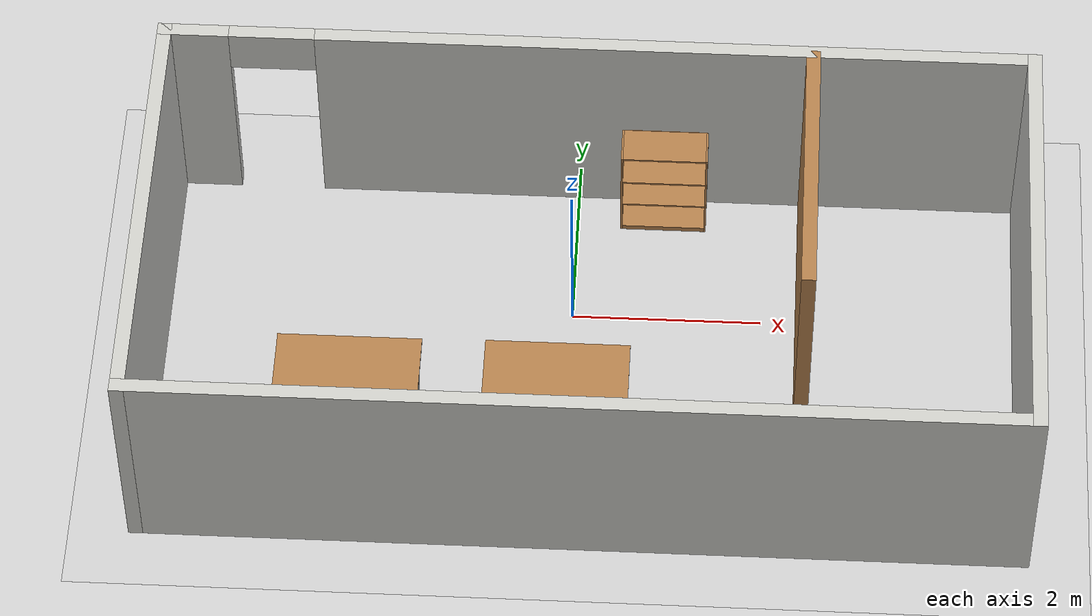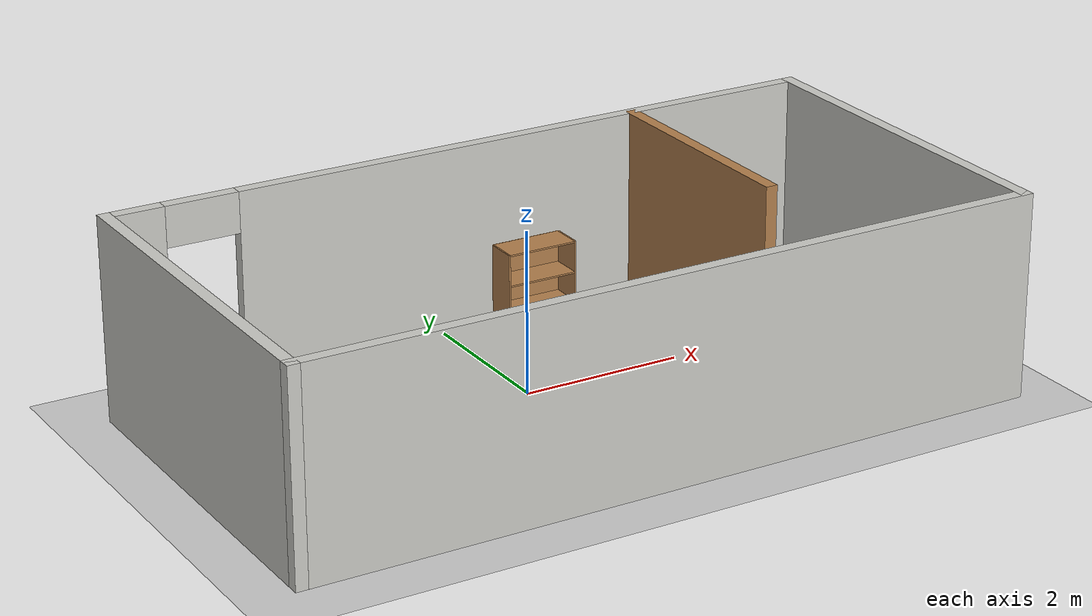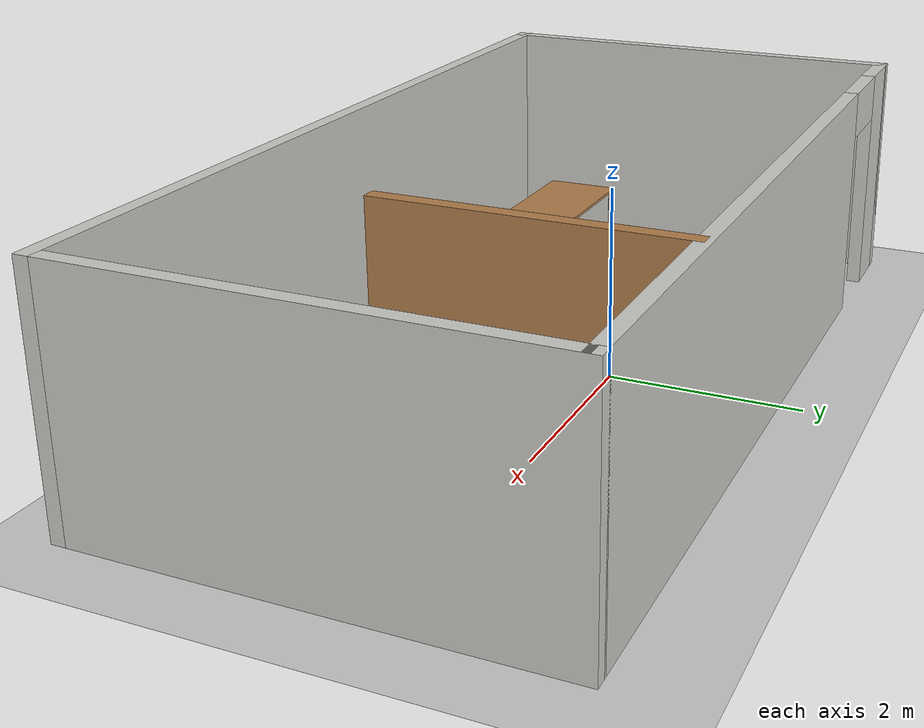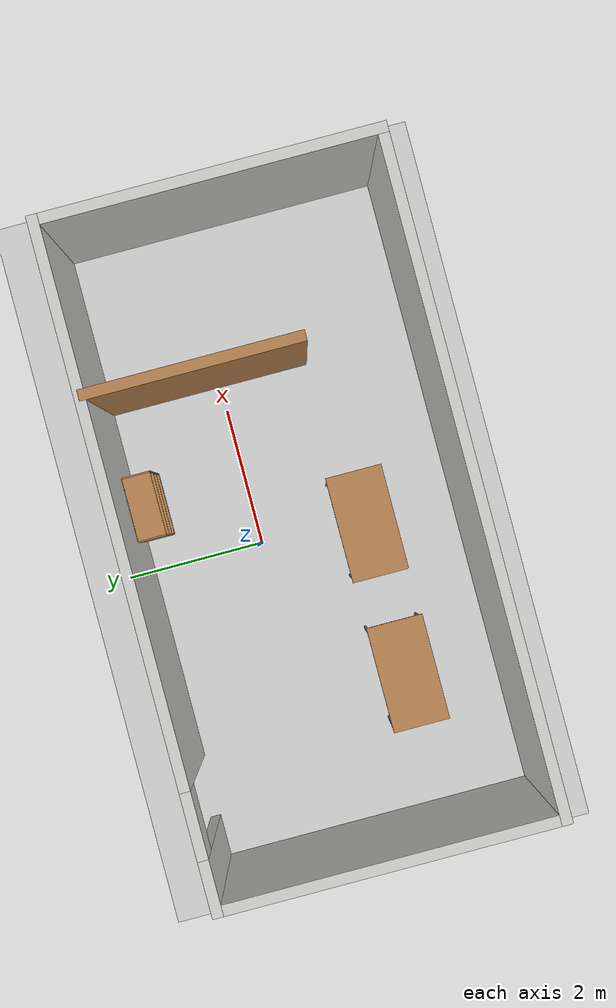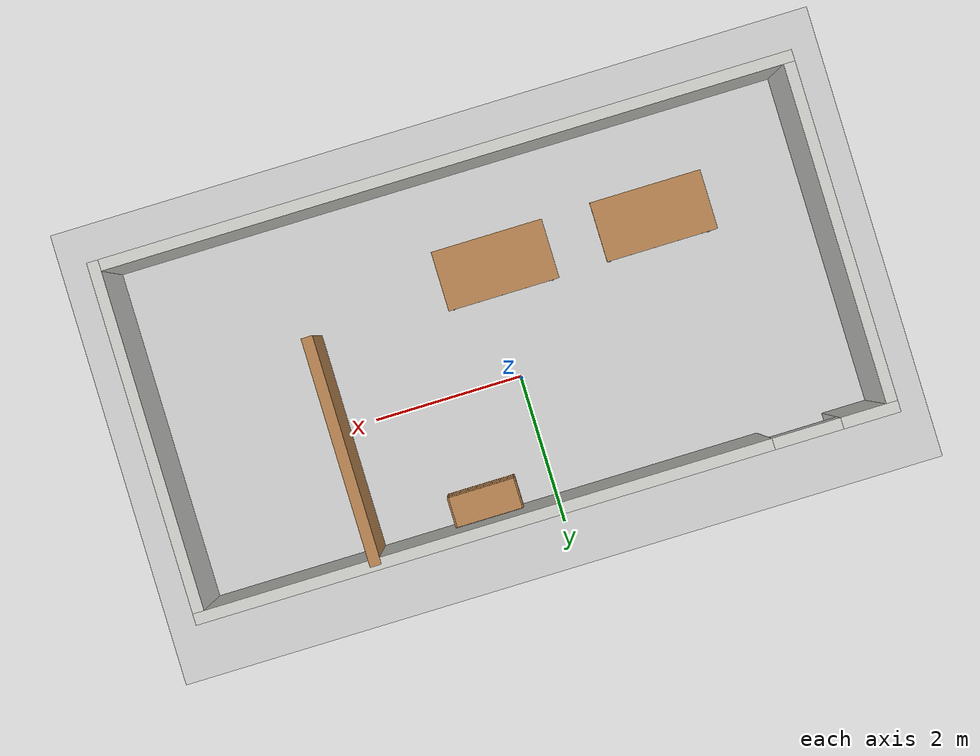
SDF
<sdf version="1.6">
 <world name="default">
  <light name="sun" type="directional">
   <pose>0 0 10 0 -0 0</pose>
   <diffuse>0.8 0.8 0.8 1</diffuse>
   <specular>0.2 0.2 0.2 1</specular>
   <attenuation>
    <range>1000</range>
    <constant>0.9</constant>
    <linear>0.01</linear>
    <quadratic>0.001</quadratic>
   </attenuation>
   <direction>-0.5 0.1 -0.9</direction>
  </light>
  <model name="ground_plane">
   <static>1</static>
   <link name="link">
    <collision name="collision">
     <geometry><plane><normal>0 0 1</normal><size>100 100</size></plane></geometry>
     <surface><friction><ode><mu>100</mu><mu2>50</mu2></ode></friction></surface>
    </collision>
    <visual name="visual">
     <cast_shadows>0</cast_shadows>
     <geometry><plane><normal>0 0 1</normal><size>100 100</size></plane></geometry>
     <material>
      <script><uri>file://media/materials/scripts/gazebo.material</uri><name>Gazebo/Grey</name></script>
     </material>
    </visual>
   </link>
  </model>
  <gravity>0 0 -9.8</gravity>
  <magnetic_field>6e-06 2.3e-05 -4.2e-05</magnetic_field>
  <atmosphere type="adiabatic"/>
  <physics name="default_physics" default="0" type="ode">
   <max_step_size>0.001</max_step_size>
   <real_time_factor>1</real_time_factor>
   <real_time_update_rate>1000</real_time_update_rate>
  </physics>
  <scene><ambient>0.4 0.4 0.4 1</ambient><background>0.7 0.7 0.7 1</background><shadows>1</shadows></scene>
  <audio><device>default</device></audio>
  <spherical_coordinates>
   <surface_model>EARTH_WGS84</surface_model>
   <latitude_deg>0</latitude_deg>
   <longitude_deg>0</longitude_deg>
   <elevation>0</elevation>
   <heading_deg>0</heading_deg>
  </spherical_coordinates>
  <model name="home3build">
   <pose>0.191539 -0.608715 0 0 -0 0</pose>
   <link name="Wall_11">
    <collision name="Wall_11_Collision">
     <geometry><box><size>3 0.15 2.5</size></box></geometry>
     <pose>0 0 1.25 0 -0 0</pose>
    </collision>
    <visual name="Wall_11_Visual">
     <pose>0 0 1.25 0 -0 0</pose>
     <geometry><box><size>3 0.15 2.5</size></box></geometry>
     <material>
      <script><uri>file://media/materials/scripts/gazebo.material</uri><name>Gazebo/Wood</name></script>
      <ambient>1 1 1 1</ambient>
     </material>
     <meta><layer>0</layer></meta>
    </visual>
    <pose>2.24831 0.814165 0 0 -0 -1.5708</pose>
   </link>
   <link name="Wall_6">
    <pose>-0 2.3 0 0 -0 0</pose>
    <visual name="Wall_6_Visual_0">
     <pose>-4.24978 0 1.25 0 -0 0</pose>
     <geometry><box><size>0.750448 0.15 2.5</size></box></geometry>
     <material>
      <script><uri>file://media/materials/scripts/gazebo.material</uri><name>Gazebo/CeilingTiled</name></script>
      <ambient>1 1 1 1</ambient>
     </material>
     <meta><layer>0</layer></meta>
    </visual>
    <collision name="Wall_6_Collision_0">
     <geometry><box><size>0.750448 0.15 2.5</size></box></geometry>
     <pose>-4.24978 0 1.25 0 -0 0</pose>
    </collision>
    <visual name="Wall_6_Visual_1">
     <pose>0.825224 0 1.25 0 -0 0</pose>
     <geometry><box><size>7.59955 0.15 2.5</size></box></geometry>
     <material>
      <script><uri>file://media/materials/scripts/gazebo.material</uri><name>Gazebo/CeilingTiled</name></script>
      <ambient>1 1 1 1</ambient>
     </material>
     <meta><layer>0</layer></meta>
    </visual>
    <collision name="Wall_6_Collision_1">
     <geometry><box><size>7.59955 0.15 2.5</size></box></geometry>
     <pose>0.825224 0 1.25 0 -0 0</pose>
    </collision>
    <visual name="Wall_6_Visual_2">
     <pose>-3.42455 0 2.25 0 -0 0</pose>
     <geometry><box><size>0.9 0.15 0.5</size></box></geometry>
     <material>
      <script><uri>file://media/materials/scripts/gazebo.material</uri><name>Gazebo/CeilingTiled</name></script>
      <ambient>1 1 1 1</ambient>
     </material>
     <meta><layer>0</layer></meta>
    </visual>
    <collision name="Wall_6_Collision_2">
     <geometry><box><size>0.9 0.15 0.5</size></box></geometry>
     <pose>-3.42455 0 2.25 0 -0 0</pose>
    </collision>
   </link>
   <link name="Wall_7">
    <collision name="Wall_7_Collision">
     <geometry><box><size>4.75 0.15 2.5</size></box></geometry>
     <pose>0 0 1.25 0 -0 0</pose>
    </collision>
    <visual name="Wall_7_Visual">
     <pose>0 0 1.25 0 -0 0</pose>
     <geometry><box><size>4.75 0.15 2.5</size></box></geometry>
     <material>
      <script><uri>file://media/materials/scripts/gazebo.material</uri><name>Gazebo/CeilingTiled</name></script>
      <ambient>1 1 1 1</ambient>
     </material>
     <meta><layer>0</layer></meta>
    </visual>
    <pose>4.55 -0 0 0 -0 -1.5708</pose>
   </link>
   <link name="Wall_8">
    <collision name="Wall_8_Collision">
     <geometry><box><size>9.25 0.15 2.5</size></box></geometry>
     <pose>0 0 1.25 0 -0 0</pose>
    </collision>
    <visual name="Wall_8_Visual">
     <pose>0 0 1.25 0 -0 0</pose>
     <geometry><box><size>9.25 0.15 2.5</size></box></geometry>
     <material>
      <script><uri>file://media/materials/scripts/gazebo.material</uri><name>Gazebo/CeilingTiled</name></script>
      <ambient>1 1 1 1</ambient>
     </material>
     <meta><layer>0</layer></meta>
    </visual>
    <pose>-0 -2.3 0 0 -0 3.14159</pose>
   </link>
   <link name="Wall_9">
    <collision name="Wall_9_Collision">
     <geometry><box><size>4.75 0.15 2.5</size></box></geometry>
     <pose>0 0 1.25 0 -0 0</pose>
    </collision>
    <visual name="Wall_9_Visual">
     <pose>0 0 1.25 0 -0 0</pose>
     <geometry><box><size>4.75 0.15 2.5</size></box></geometry>
     <material>
      <script><uri>file://media/materials/scripts/gazebo.material</uri><name>Gazebo/CeilingTiled</name></script>
      <ambient>1 1 1 1</ambient>
     </material>
     <meta><layer>0</layer></meta>
    </visual>
    <pose>-4.55 -0 0 0 -0 1.5708</pose>
   </link>
   <static>1</static>
  </model>
  <model name="bookshelf">
   <static>1</static>
   <link name="link">
    <inertial><mass>1</mass></inertial>
    <collision name="back">
     <pose>0 0.005 0.6 0 -0 0</pose>
     <geometry><box><size>0.9 0.01 1.2</size></box></geometry>
    </collision>
    <visual name="visual1">
     <pose>0 0.005 0.6 0 -0 0</pose>
     <geometry><box><size>0.9 0.01 1.2</size></box></geometry>
     <material>
      <script><uri>file://media/materials/scripts/gazebo.material</uri><name>Gazebo/Wood</name></script>
     </material>
    </visual>
    <collision name="left_side">
     <pose>0.45 -0.195 0.6 0 -0 0</pose>
     <geometry><box><size>0.02 0.4 1.2</size></box></geometry>
    </collision>
    <visual name="visual2">
     <pose>0.45 -0.195 0.6 0 -0 0</pose>
     <geometry><box><size>0.02 0.4 1.2</size></box></geometry>
     <material>
      <script><uri>file://media/materials/scripts/gazebo.material</uri><name>Gazebo/Wood</name></script>
     </material>
    </visual>
    <collision name="right_side">
     <pose>-0.45 -0.195 0.6 0 -0 0</pose>
     <geometry><box><size>0.02 0.4 1.2</size></box></geometry>
    </collision>
    <visual name="visual3">
     <pose>-0.45 -0.195 0.6 0 -0 0</pose>
     <geometry><box><size>0.02 0.4 1.2</size></box></geometry>
     <material>
      <script><uri>file://media/materials/scripts/gazebo.material</uri><name>Gazebo/Wood</name></script>
     </material>
    </visual>
    <collision name="bottom">
     <pose>0 -0.195 0.03 0 -0 0</pose>
     <geometry><box><size>0.88 0.4 0.06</size></box></geometry>
    </collision>
    <visual name="visual4">
     <pose>0 -0.195 0.03 0 -0 0</pose>
     <geometry><box><size>0.88 0.4 0.06</size></box></geometry>
     <material>
      <script><uri>file://media/materials/scripts/gazebo.material</uri><name>Gazebo/Wood</name></script>
     </material>
    </visual>
    <collision name="top">
     <pose>0 -0.195 1.19 0 -0 0</pose>
     <geometry><box><size>0.88 0.4 0.02</size></box></geometry>
    </collision>
    <visual name="visual5">
     <pose>0 -0.195 1.19 0 -0 0</pose>
     <geometry><box><size>0.88 0.4 0.02</size></box></geometry>
     <material>
      <script><uri>file://media/materials/scripts/gazebo.material</uri><name>Gazebo/Wood</name></script>
     </material>
    </visual>
    <collision name="low_shelf">
     <pose>0 -0.195 0.43 0 -0 0</pose>
     <geometry><box><size>0.88 0.4 0.02</size></box></geometry>
    </collision>
    <visual name="visual6">
     <pose>0 -0.195 0.43 0 -0 0</pose>
     <geometry><box><size>0.88 0.4 0.02</size></box></geometry>
     <material>
      <script><uri>file://media/materials/scripts/gazebo.material</uri><name>Gazebo/Wood</name></script>
     </material>
    </visual>
    <collision name="high_shelf">
     <pose>0 -0.195 0.8 0 -0 0</pose>
     <geometry><box><size>0.88 0.4 0.02</size></box></geometry>
    </collision>
    <visual name="visual7">
     <pose>0 -0.195 0.8 0 -0 0</pose>
     <geometry><box><size>0.88 0.4 0.02</size></box></geometry>
     <material>
      <script><uri>file://media/materials/scripts/gazebo.material</uri><name>Gazebo/Wood</name></script>
     </material>
    </visual>
   </link>
   <pose>0.914397 1.6002 0 0 -0 0</pose>
  </model>
  <model name="table">
   <static>1</static>
   <link name="link">
    <collision name="surface">
     <pose>0 0 1 0 -0 0</pose>
     <geometry><box><size>1.5 0.8 0.03</size></box></geometry>
     <surface><friction><ode><mu>0.6</mu><mu2>0.6</mu2></ode></friction></surface>
    </collision>
    <visual name="visual1">
     <pose>0 0 1 0 -0 0</pose>
     <geometry><box><size>1.5 0.8 0.03</size></box></geometry>
     <material>
      <script><uri>file://media/materials/scripts/gazebo.material</uri><name>Gazebo/Wood</name></script>
     </material>
    </visual>
    <collision name="front_left_leg">
     <pose>0.68 0.38 0.5 0 -0 0</pose>
     <geometry><cylinder><radius>0.02</radius><length>1</length></cylinder></geometry>
    </collision>
    <visual name="front_left_leg">
     <pose>0.68 0.38 0.5 0 -0 0</pose>
     <geometry><cylinder><radius>0.02</radius><length>1</length></cylinder></geometry>
     <material>
      <script><uri>file://media/materials/scripts/gazebo.material</uri><name>Gazebo/Grey</name></script>
     </material>
    </visual>
    <collision name="front_right_leg">
     <pose>0.68 -0.38 0.5 0 -0 0</pose>
     <geometry><cylinder><radius>0.02</radius><length>1</length></cylinder></geometry>
    </collision>
    <visual name="front_right_leg">
     <pose>0.68 -0.38 0.5 0 -0 0</pose>
     <geometry><cylinder><radius>0.02</radius><length>1</length></cylinder></geometry>
     <material>
      <script><uri>file://media/materials/scripts/gazebo.material</uri><name>Gazebo/Grey</name></script>
     </material>
    </visual>
    <collision name="back_right_leg">
     <pose>-0.68 -0.38 0.5 0 -0 0</pose>
     <geometry><cylinder><radius>0.02</radius><length>1</length></cylinder></geometry>
    </collision>
    <visual name="back_right_leg">
     <pose>-0.68 -0.38 0.5 0 -0 0</pose>
     <geometry><cylinder><radius>0.02</radius><length>1</length></cylinder></geometry>
     <material>
      <script><uri>file://media/materials/scripts/gazebo.material</uri><name>Gazebo/Grey</name></script>
     </material>
    </visual>
    <collision name="back_left_leg">
     <pose>-0.68 0.38 0.5 0 -0 0</pose>
     <geometry><cylinder><radius>0.02</radius><length>1</length></cylinder></geometry>
    </collision>
    <visual name="back_left_leg">
     <pose>-0.68 0.38 0.5 0 -0 0</pose>
     <geometry><cylinder><radius>0.02</radius><length>1</length></cylinder></geometry>
     <material>
      <script><uri>file://media/materials/scripts/gazebo.material</uri><name>Gazebo/Grey</name></script>
     </material>
    </visual>
   </link>
   <pose>-0.097971 -1.50222 0 0 -0 0</pose>
  </model>
  <model name="table_0">
   <static>1</static>
   <link name="link">
    <collision name="surface">
     <pose>0 0 1 0 -0 0</pose>
     <geometry><box><size>1.5 0.8 0.03</size></box></geometry>
     <surface><friction><ode><mu>0.6</mu><mu2>0.6</mu2></ode></friction></surface>
    </collision>
    <visual name="visual1">
     <pose>0 0 1 0 -0 0</pose>
     <geometry><box><size>1.5 0.8 0.03</size></box></geometry>
     <material>
      <script><uri>file://media/materials/scripts/gazebo.material</uri><name>Gazebo/Wood</name></script>
     </material>
    </visual>
    <collision name="front_left_leg">
     <pose>0.68 0.38 0.5 0 -0 0</pose>
     <geometry><cylinder><radius>0.02</radius><length>1</length></cylinder></geometry>
    </collision>
    <visual name="front_left_leg">
     <pose>0.68 0.38 0.5 0 -0 0</pose>
     <geometry><cylinder><radius>0.02</radius><length>1</length></cylinder></geometry>
     <material>
      <script><uri>file://media/materials/scripts/gazebo.material</uri><name>Gazebo/Grey</name></script>
     </material>
    </visual>
    <collision name="front_right_leg">
     <pose>0.68 -0.38 0.5 0 -0 0</pose>
     <geometry><cylinder><radius>0.02</radius><length>1</length></cylinder></geometry>
    </collision>
    <visual name="front_right_leg">
     <pose>0.68 -0.38 0.5 0 -0 0</pose>
     <geometry><cylinder><radius>0.02</radius><length>1</length></cylinder></geometry>
     <material>
      <script><uri>file://media/materials/scripts/gazebo.material</uri><name>Gazebo/Grey</name></script>
     </material>
    </visual>
    <collision name="back_right_leg">
     <pose>-0.68 -0.38 0.5 0 -0 0</pose>
     <geometry><cylinder><radius>0.02</radius><length>1</length></cylinder></geometry>
    </collision>
    <visual name="back_right_leg">
     <pose>-0.68 -0.38 0.5 0 -0 0</pose>
     <geometry><cylinder><radius>0.02</radius><length>1</length></cylinder></geometry>
     <material>
      <script><uri>file://media/materials/scripts/gazebo.material</uri><name>Gazebo/Grey</name></script>
     </material>
    </visual>
    <collision name="back_left_leg">
     <pose>-0.68 0.38 0.5 0 -0 0</pose>
     <geometry><cylinder><radius>0.02</radius><length>1</length></cylinder></geometry>
    </collision>
    <visual name="back_left_leg">
     <pose>-0.68 0.38 0.5 0 -0 0</pose>
     <geometry><cylinder><radius>0.02</radius><length>1</length></cylinder></geometry>
     <material>
      <script><uri>file://media/materials/scripts/gazebo.material</uri><name>Gazebo/Grey</name></script>
     </material>
    </visual>
   </link>
   <pose>-2.2539 -1.51799 0 0 -0 0</pose>
  </model>
 </world>
</sdf>
